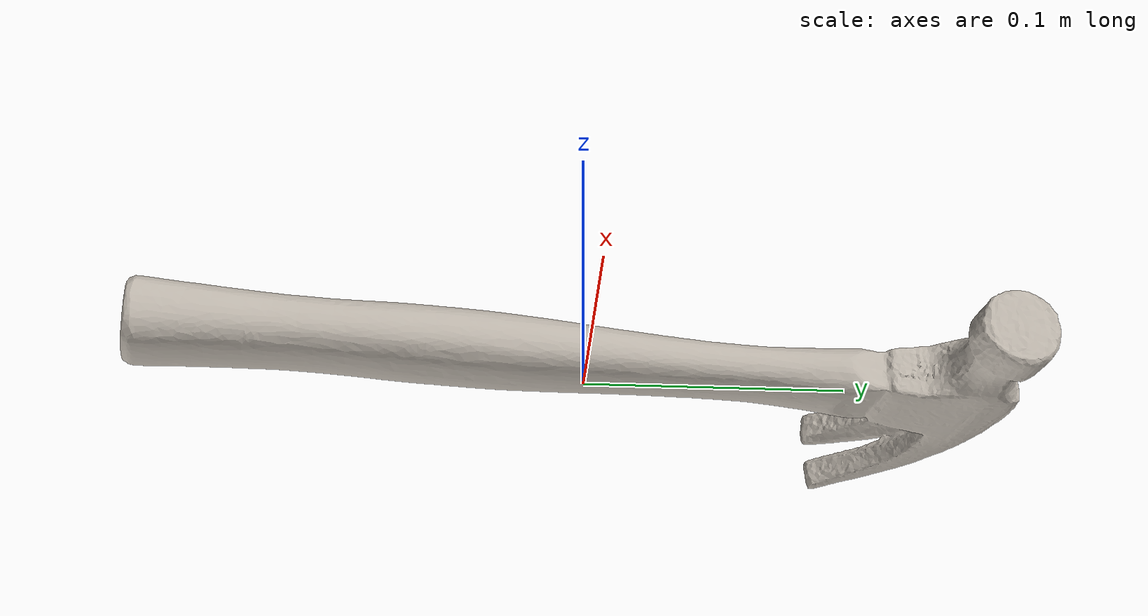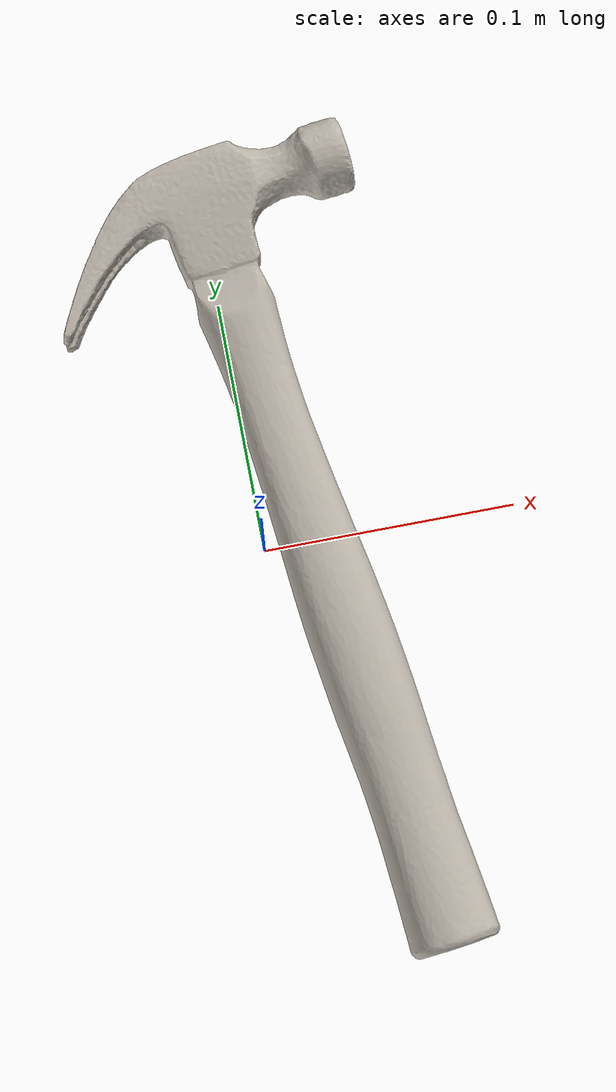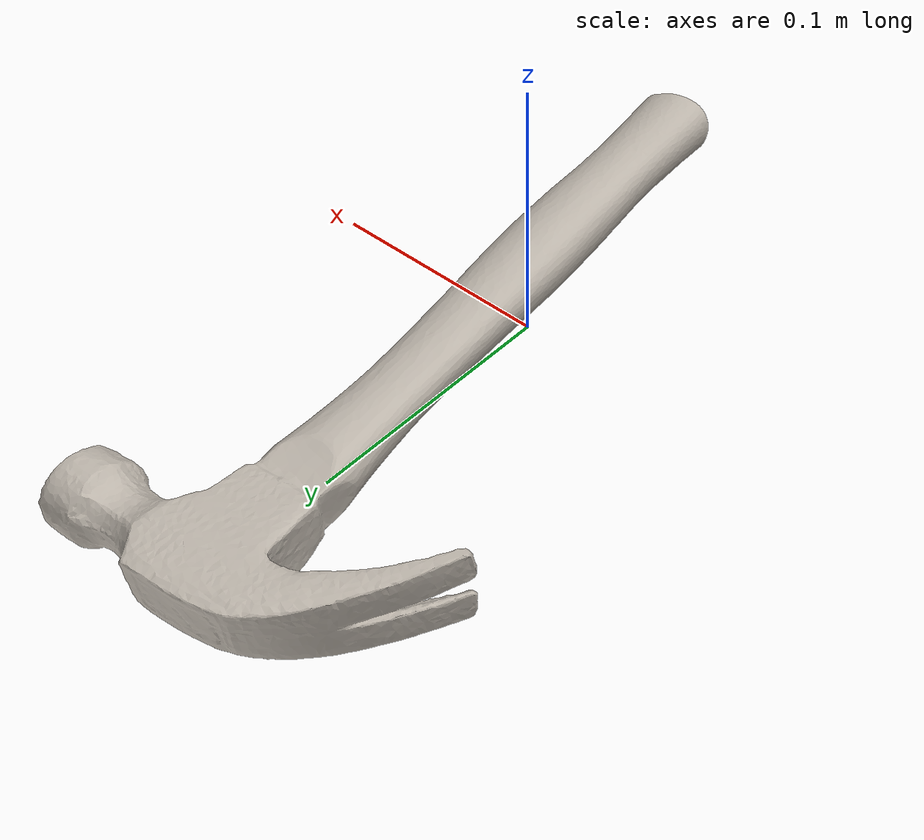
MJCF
<mujoco model="hammer">
  <default>
    <default class="visual">
      <geom group="1" type="mesh" contype="0" conaffinity="0"/>
    </default>
    <default class="collision">
      <geom group="0" type="mesh"/>
    </default>
  </default>
  <asset>
    <texture type="2d" name="hammer" file="hammer.png"/>
    <material name="hammer" texture="hammer" specular="0.4000000000000001" shininess="0.001"/>
    <mesh name="hammer" file="hammer.obj"/>
  </asset>
  <worldbody>
    <body>
    <body name="object">
      <geom material="hammer" mesh="hammer" class="visual"/>
      <geom mesh="hammer" class="collision"/>
    </body>
      <site rgba="0 0 0 0" size="0.005" pos="0 0 -0.04" name="bottom_site" />
      <site rgba="0 0 0 0" size="0.005" pos="0 0 0.04" name="top_site" />
      <site rgba="0 0 0 0" size="0.005" pos="0.005 0.005 0" name="horizontal_radius_site" />
   </body>
  </worldbody>
</mujoco>
